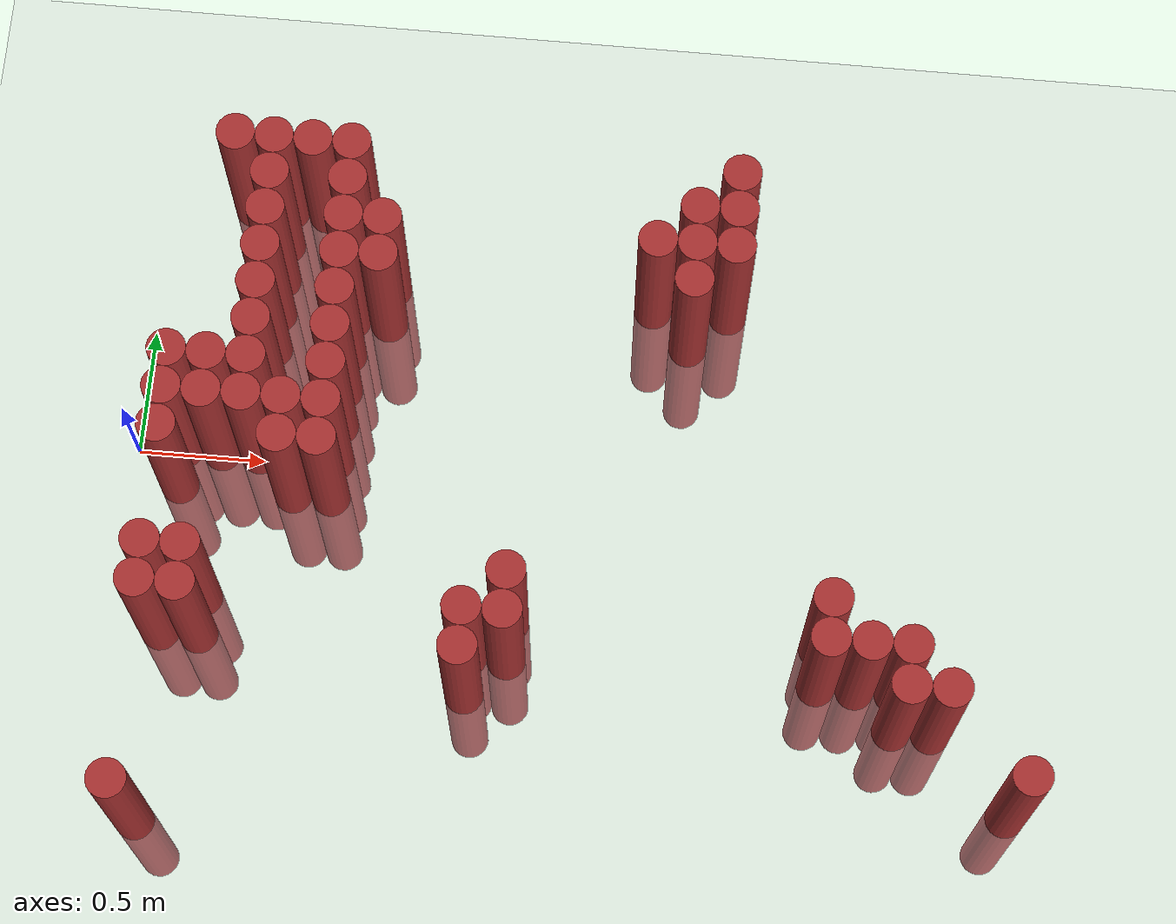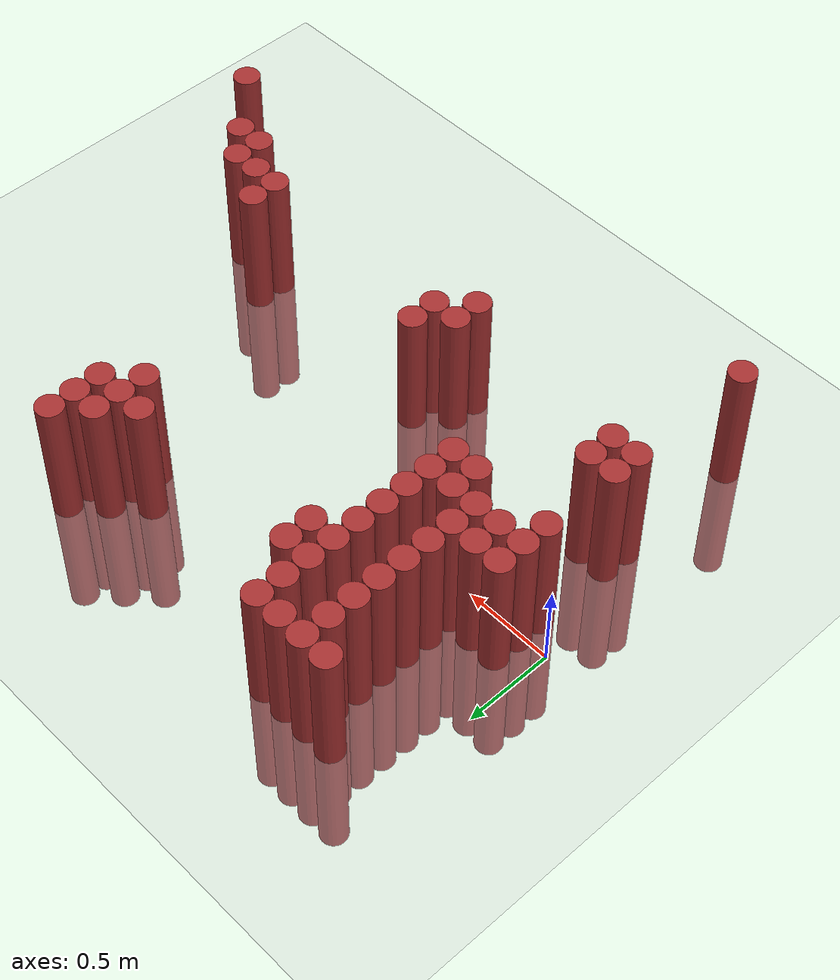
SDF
<sdf version="1.6">
 <world name="default">
  <model name="ground_plane">
   <static>1</static>
   <link name="link">
    <collision name="collision">
     <geometry><plane><normal>0 0 1</normal><size>100 100</size></plane></geometry>
     <surface><friction><ode><mu>100</mu><mu2>50</mu2></ode></friction></surface>
    </collision>
    <visual name="visual">
     <cast_shadows>0</cast_shadows>
     <geometry><plane><normal>0 0 1</normal><size>100 100</size></plane></geometry>
     <material>
      <script><uri>file://media/materials/scripts/gazebo.material</uri><name>Gazebo/Grey</name></script>
     </material>
    </visual>
   </link>
  </model>
  <model name="unit_cylinder_430">
   <static>1</static>
   <pose>0.175000 -1.475000 0.000000 0.000000 0.000000 0.000000</pose>
   <link name="link">
    <inertial>
     <mass>1</mass>
     <inertia><ixx>0.145833</ixx><ixy>0</ixy><ixz>0</ixz><iyy>0.145833</iyy><iyz>0</iyz><izz>0.125</izz></inertia>
    </inertial>
    <collision name="collision">
     <geometry><cylinder><radius>0.075000</radius><length>1.5</length></cylinder></geometry>
    </collision>
    <visual name="visual">
     <geometry><cylinder><radius>0.075000</radius><length>1.5</length></cylinder></geometry>
     <material>
      <ambient>0.648000 0.192000 0.192000 1</ambient>
      <diffuse>0.648000 0.192000 0.192000 1</diffuse>
     </material>
     <material>
      <script><name>Gazebo/Grey</name><uri>file://media/materials/scripts/gazebo.material</uri></script>
     </material>
    </visual>
   </link>
  </model>
  <model name="unit_cylinder_431">
   <static>1</static>
   <pose>0.175000 -0.725000 0.000000 0.000000 0.000000 0.000000</pose>
   <link name="link">
    <inertial>
     <mass>1</mass>
     <inertia><ixx>0.145833</ixx><ixy>0</ixy><ixz>0</ixz><iyy>0.145833</iyy><iyz>0</iyz><izz>0.125</izz></inertia>
    </inertial>
    <collision name="collision">
     <geometry><cylinder><radius>0.075000</radius><length>1.5</length></cylinder></geometry>
    </collision>
    <visual name="visual">
     <geometry><cylinder><radius>0.075000</radius><length>1.5</length></cylinder></geometry>
     <material>
      <ambient>0.648000 0.192000 0.192000 1</ambient>
      <diffuse>0.648000 0.192000 0.192000 1</diffuse>
     </material>
     <material>
      <script><name>Gazebo/Grey</name><uri>file://media/materials/scripts/gazebo.material</uri></script>
     </material>
    </visual>
   </link>
  </model>
  <model name="unit_cylinder_432">
   <static>1</static>
   <pose>0.175000 -0.575000 0.000000 0.000000 0.000000 0.000000</pose>
   <link name="link">
    <inertial>
     <mass>1</mass>
     <inertia><ixx>0.145833</ixx><ixy>0</ixy><ixz>0</ixz><iyy>0.145833</iyy><iyz>0</iyz><izz>0.125</izz></inertia>
    </inertial>
    <collision name="collision">
     <geometry><cylinder><radius>0.075000</radius><length>1.5</length></cylinder></geometry>
    </collision>
    <visual name="visual">
     <geometry><cylinder><radius>0.075000</radius><length>1.5</length></cylinder></geometry>
     <material>
      <ambient>0.648000 0.192000 0.192000 1</ambient>
      <diffuse>0.648000 0.192000 0.192000 1</diffuse>
     </material>
     <material>
      <script><name>Gazebo/Grey</name><uri>file://media/materials/scripts/gazebo.material</uri></script>
     </material>
    </visual>
   </link>
  </model>
  <model name="unit_cylinder_433">
   <static>1</static>
   <pose>0.175000 -0.125000 0.000000 0.000000 0.000000 0.000000</pose>
   <link name="link">
    <inertial>
     <mass>1</mass>
     <inertia><ixx>0.145833</ixx><ixy>0</ixy><ixz>0</ixz><iyy>0.145833</iyy><iyz>0</iyz><izz>0.125</izz></inertia>
    </inertial>
    <collision name="collision">
     <geometry><cylinder><radius>0.075000</radius><length>1.5</length></cylinder></geometry>
    </collision>
    <visual name="visual">
     <geometry><cylinder><radius>0.075000</radius><length>1.5</length></cylinder></geometry>
     <material>
      <ambient>0.648000 0.192000 0.192000 1</ambient>
      <diffuse>0.648000 0.192000 0.192000 1</diffuse>
     </material>
     <material>
      <script><name>Gazebo/Grey</name><uri>file://media/materials/scripts/gazebo.material</uri></script>
     </material>
    </visual>
   </link>
  </model>
  <model name="unit_cylinder_434">
   <static>1</static>
   <pose>0.175000 0.025000 0.000000 0.000000 0.000000 0.000000</pose>
   <link name="link">
    <inertial>
     <mass>1</mass>
     <inertia><ixx>0.145833</ixx><ixy>0</ixy><ixz>0</ixz><iyy>0.145833</iyy><iyz>0</iyz><izz>0.125</izz></inertia>
    </inertial>
    <collision name="collision">
     <geometry><cylinder><radius>0.075000</radius><length>1.5</length></cylinder></geometry>
    </collision>
    <visual name="visual">
     <geometry><cylinder><radius>0.075000</radius><length>1.5</length></cylinder></geometry>
     <material>
      <ambient>0.648000 0.192000 0.192000 1</ambient>
      <diffuse>0.648000 0.192000 0.192000 1</diffuse>
     </material>
     <material>
      <script><name>Gazebo/Grey</name><uri>file://media/materials/scripts/gazebo.material</uri></script>
     </material>
    </visual>
   </link>
  </model>
  <model name="unit_cylinder_435">
   <static>1</static>
   <pose>0.175000 0.175000 0.000000 0.000000 0.000000 0.000000</pose>
   <link name="link">
    <inertial>
     <mass>1</mass>
     <inertia><ixx>0.145833</ixx><ixy>0</ixy><ixz>0</ixz><iyy>0.145833</iyy><iyz>0</iyz><izz>0.125</izz></inertia>
    </inertial>
    <collision name="collision">
     <geometry><cylinder><radius>0.075000</radius><length>1.5</length></cylinder></geometry>
    </collision>
    <visual name="visual">
     <geometry><cylinder><radius>0.075000</radius><length>1.5</length></cylinder></geometry>
     <material>
      <ambient>0.648000 0.192000 0.192000 1</ambient>
      <diffuse>0.648000 0.192000 0.192000 1</diffuse>
     </material>
     <material>
      <script><name>Gazebo/Grey</name><uri>file://media/materials/scripts/gazebo.material</uri></script>
     </material>
    </visual>
   </link>
  </model>
  <model name="unit_cylinder_446">
   <static>1</static>
   <pose>0.325000 -0.725000 0.000000 0.000000 0.000000 0.000000</pose>
   <link name="link">
    <inertial>
     <mass>1</mass>
     <inertia><ixx>0.145833</ixx><ixy>0</ixy><ixz>0</ixz><iyy>0.145833</iyy><iyz>0</iyz><izz>0.125</izz></inertia>
    </inertial>
    <collision name="collision">
     <geometry><cylinder><radius>0.075000</radius><length>1.5</length></cylinder></geometry>
    </collision>
    <visual name="visual">
     <geometry><cylinder><radius>0.075000</radius><length>1.5</length></cylinder></geometry>
     <material>
      <ambient>0.648000 0.192000 0.192000 1</ambient>
      <diffuse>0.648000 0.192000 0.192000 1</diffuse>
     </material>
     <material>
      <script><name>Gazebo/Grey</name><uri>file://media/materials/scripts/gazebo.material</uri></script>
     </material>
    </visual>
   </link>
  </model>
  <model name="unit_cylinder_447">
   <static>1</static>
   <pose>0.325000 -0.575000 0.000000 0.000000 0.000000 0.000000</pose>
   <link name="link">
    <inertial>
     <mass>1</mass>
     <inertia><ixx>0.145833</ixx><ixy>0</ixy><ixz>0</ixz><iyy>0.145833</iyy><iyz>0</iyz><izz>0.125</izz></inertia>
    </inertial>
    <collision name="collision">
     <geometry><cylinder><radius>0.075000</radius><length>1.5</length></cylinder></geometry>
    </collision>
    <visual name="visual">
     <geometry><cylinder><radius>0.075000</radius><length>1.5</length></cylinder></geometry>
     <material>
      <ambient>0.648000 0.192000 0.192000 1</ambient>
      <diffuse>0.648000 0.192000 0.192000 1</diffuse>
     </material>
     <material>
      <script><name>Gazebo/Grey</name><uri>file://media/materials/scripts/gazebo.material</uri></script>
     </material>
    </visual>
   </link>
  </model>
  <model name="unit_cylinder_448">
   <static>1</static>
   <pose>0.325000 0.025000 0.000000 0.000000 0.000000 0.000000</pose>
   <link name="link">
    <inertial>
     <mass>1</mass>
     <inertia><ixx>0.145833</ixx><ixy>0</ixy><ixz>0</ixz><iyy>0.145833</iyy><iyz>0</iyz><izz>0.125</izz></inertia>
    </inertial>
    <collision name="collision">
     <geometry><cylinder><radius>0.075000</radius><length>1.5</length></cylinder></geometry>
    </collision>
    <visual name="visual">
     <geometry><cylinder><radius>0.075000</radius><length>1.5</length></cylinder></geometry>
     <material>
      <ambient>0.648000 0.192000 0.192000 1</ambient>
      <diffuse>0.648000 0.192000 0.192000 1</diffuse>
     </material>
     <material>
      <script><name>Gazebo/Grey</name><uri>file://media/materials/scripts/gazebo.material</uri></script>
     </material>
    </visual>
   </link>
  </model>
  <model name="unit_cylinder_449">
   <static>1</static>
   <pose>0.325000 0.175000 0.000000 0.000000 0.000000 0.000000</pose>
   <link name="link">
    <inertial>
     <mass>1</mass>
     <inertia><ixx>0.145833</ixx><ixy>0</ixy><ixz>0</ixz><iyy>0.145833</iyy><iyz>0</iyz><izz>0.125</izz></inertia>
    </inertial>
    <collision name="collision">
     <geometry><cylinder><radius>0.075000</radius><length>1.5</length></cylinder></geometry>
    </collision>
    <visual name="visual">
     <geometry><cylinder><radius>0.075000</radius><length>1.5</length></cylinder></geometry>
     <material>
      <ambient>0.648000 0.192000 0.192000 1</ambient>
      <diffuse>0.648000 0.192000 0.192000 1</diffuse>
     </material>
     <material>
      <script><name>Gazebo/Grey</name><uri>file://media/materials/scripts/gazebo.material</uri></script>
     </material>
    </visual>
   </link>
  </model>
  <model name="unit_cylinder_450">
   <static>1</static>
   <pose>0.325000 1.075000 0.000000 0.000000 0.000000 0.000000</pose>
   <link name="link">
    <inertial>
     <mass>1</mass>
     <inertia><ixx>0.145833</ixx><ixy>0</ixy><ixz>0</ixz><iyy>0.145833</iyy><iyz>0</iyz><izz>0.125</izz></inertia>
    </inertial>
    <collision name="collision">
     <geometry><cylinder><radius>0.075000</radius><length>1.5</length></cylinder></geometry>
    </collision>
    <visual name="visual">
     <geometry><cylinder><radius>0.075000</radius><length>1.5</length></cylinder></geometry>
     <material>
      <ambient>0.648000 0.192000 0.192000 1</ambient>
      <diffuse>0.648000 0.192000 0.192000 1</diffuse>
     </material>
     <material>
      <script><name>Gazebo/Grey</name><uri>file://media/materials/scripts/gazebo.material</uri></script>
     </material>
    </visual>
   </link>
  </model>
  <model name="unit_cylinder_460">
   <static>1</static>
   <pose>0.475000 0.025000 0.000000 0.000000 0.000000 0.000000</pose>
   <link name="link">
    <inertial>
     <mass>1</mass>
     <inertia><ixx>0.145833</ixx><ixy>0</ixy><ixz>0</ixz><iyy>0.145833</iyy><iyz>0</iyz><izz>0.125</izz></inertia>
    </inertial>
    <collision name="collision">
     <geometry><cylinder><radius>0.075000</radius><length>1.5</length></cylinder></geometry>
    </collision>
    <visual name="visual">
     <geometry><cylinder><radius>0.075000</radius><length>1.5</length></cylinder></geometry>
     <material>
      <ambient>0.648000 0.192000 0.192000 1</ambient>
      <diffuse>0.648000 0.192000 0.192000 1</diffuse>
     </material>
     <material>
      <script><name>Gazebo/Grey</name><uri>file://media/materials/scripts/gazebo.material</uri></script>
     </material>
    </visual>
   </link>
  </model>
  <model name="unit_cylinder_461">
   <static>1</static>
   <pose>0.475000 0.175000 0.000000 0.000000 0.000000 0.000000</pose>
   <link name="link">
    <inertial>
     <mass>1</mass>
     <inertia><ixx>0.145833</ixx><ixy>0</ixy><ixz>0</ixz><iyy>0.145833</iyy><iyz>0</iyz><izz>0.125</izz></inertia>
    </inertial>
    <collision name="collision">
     <geometry><cylinder><radius>0.075000</radius><length>1.5</length></cylinder></geometry>
    </collision>
    <visual name="visual">
     <geometry><cylinder><radius>0.075000</radius><length>1.5</length></cylinder></geometry>
     <material>
      <ambient>0.648000 0.192000 0.192000 1</ambient>
      <diffuse>0.648000 0.192000 0.192000 1</diffuse>
     </material>
     <material>
      <script><name>Gazebo/Grey</name><uri>file://media/materials/scripts/gazebo.material</uri></script>
     </material>
    </visual>
   </link>
  </model>
  <model name="unit_cylinder_462">
   <static>1</static>
   <pose>0.475000 0.325000 0.000000 0.000000 0.000000 0.000000</pose>
   <link name="link">
    <inertial>
     <mass>1</mass>
     <inertia><ixx>0.145833</ixx><ixy>0</ixy><ixz>0</ixz><iyy>0.145833</iyy><iyz>0</iyz><izz>0.125</izz></inertia>
    </inertial>
    <collision name="collision">
     <geometry><cylinder><radius>0.075000</radius><length>1.5</length></cylinder></geometry>
    </collision>
    <visual name="visual">
     <geometry><cylinder><radius>0.075000</radius><length>1.5</length></cylinder></geometry>
     <material>
      <ambient>0.648000 0.192000 0.192000 1</ambient>
      <diffuse>0.648000 0.192000 0.192000 1</diffuse>
     </material>
     <material>
      <script><name>Gazebo/Grey</name><uri>file://media/materials/scripts/gazebo.material</uri></script>
     </material>
    </visual>
   </link>
  </model>
  <model name="unit_cylinder_463">
   <static>1</static>
   <pose>0.475000 0.475000 0.000000 0.000000 0.000000 0.000000</pose>
   <link name="link">
    <inertial>
     <mass>1</mass>
     <inertia><ixx>0.145833</ixx><ixy>0</ixy><ixz>0</ixz><iyy>0.145833</iyy><iyz>0</iyz><izz>0.125</izz></inertia>
    </inertial>
    <collision name="collision">
     <geometry><cylinder><radius>0.075000</radius><length>1.5</length></cylinder></geometry>
    </collision>
    <visual name="visual">
     <geometry><cylinder><radius>0.075000</radius><length>1.5</length></cylinder></geometry>
     <material>
      <ambient>0.648000 0.192000 0.192000 1</ambient>
      <diffuse>0.648000 0.192000 0.192000 1</diffuse>
     </material>
     <material>
      <script><name>Gazebo/Grey</name><uri>file://media/materials/scripts/gazebo.material</uri></script>
     </material>
    </visual>
   </link>
  </model>
  <model name="unit_cylinder_464">
   <static>1</static>
   <pose>0.475000 0.625000 0.000000 0.000000 0.000000 0.000000</pose>
   <link name="link">
    <inertial>
     <mass>1</mass>
     <inertia><ixx>0.145833</ixx><ixy>0</ixy><ixz>0</ixz><iyy>0.145833</iyy><iyz>0</iyz><izz>0.125</izz></inertia>
    </inertial>
    <collision name="collision">
     <geometry><cylinder><radius>0.075000</radius><length>1.5</length></cylinder></geometry>
    </collision>
    <visual name="visual">
     <geometry><cylinder><radius>0.075000</radius><length>1.5</length></cylinder></geometry>
     <material>
      <ambient>0.648000 0.192000 0.192000 1</ambient>
      <diffuse>0.648000 0.192000 0.192000 1</diffuse>
     </material>
     <material>
      <script><name>Gazebo/Grey</name><uri>file://media/materials/scripts/gazebo.material</uri></script>
     </material>
    </visual>
   </link>
  </model>
  <model name="unit_cylinder_465">
   <static>1</static>
   <pose>0.475000 0.775000 0.000000 0.000000 0.000000 0.000000</pose>
   <link name="link">
    <inertial>
     <mass>1</mass>
     <inertia><ixx>0.145833</ixx><ixy>0</ixy><ixz>0</ixz><iyy>0.145833</iyy><iyz>0</iyz><izz>0.125</izz></inertia>
    </inertial>
    <collision name="collision">
     <geometry><cylinder><radius>0.075000</radius><length>1.5</length></cylinder></geometry>
    </collision>
    <visual name="visual">
     <geometry><cylinder><radius>0.075000</radius><length>1.5</length></cylinder></geometry>
     <material>
      <ambient>0.648000 0.192000 0.192000 1</ambient>
      <diffuse>0.648000 0.192000 0.192000 1</diffuse>
     </material>
     <material>
      <script><name>Gazebo/Grey</name><uri>file://media/materials/scripts/gazebo.material</uri></script>
     </material>
    </visual>
   </link>
  </model>
  <model name="unit_cylinder_466">
   <static>1</static>
   <pose>0.475000 0.925000 0.000000 0.000000 0.000000 0.000000</pose>
   <link name="link">
    <inertial>
     <mass>1</mass>
     <inertia><ixx>0.145833</ixx><ixy>0</ixy><ixz>0</ixz><iyy>0.145833</iyy><iyz>0</iyz><izz>0.125</izz></inertia>
    </inertial>
    <collision name="collision">
     <geometry><cylinder><radius>0.075000</radius><length>1.5</length></cylinder></geometry>
    </collision>
    <visual name="visual">
     <geometry><cylinder><radius>0.075000</radius><length>1.5</length></cylinder></geometry>
     <material>
      <ambient>0.648000 0.192000 0.192000 1</ambient>
      <diffuse>0.648000 0.192000 0.192000 1</diffuse>
     </material>
     <material>
      <script><name>Gazebo/Grey</name><uri>file://media/materials/scripts/gazebo.material</uri></script>
     </material>
    </visual>
   </link>
  </model>
  <model name="unit_cylinder_467">
   <static>1</static>
   <pose>0.475000 1.075000 0.000000 0.000000 0.000000 0.000000</pose>
   <link name="link">
    <inertial>
     <mass>1</mass>
     <inertia><ixx>0.145833</ixx><ixy>0</ixy><ixz>0</ixz><iyy>0.145833</iyy><iyz>0</iyz><izz>0.125</izz></inertia>
    </inertial>
    <collision name="collision">
     <geometry><cylinder><radius>0.075000</radius><length>1.5</length></cylinder></geometry>
    </collision>
    <visual name="visual">
     <geometry><cylinder><radius>0.075000</radius><length>1.5</length></cylinder></geometry>
     <material>
      <ambient>0.648000 0.192000 0.192000 1</ambient>
      <diffuse>0.648000 0.192000 0.192000 1</diffuse>
     </material>
     <material>
      <script><name>Gazebo/Grey</name><uri>file://media/materials/scripts/gazebo.material</uri></script>
     </material>
    </visual>
   </link>
  </model>
  <model name="unit_cylinder_473">
   <static>1</static>
   <pose>0.625000 -0.125000 0.000000 0.000000 0.000000 0.000000</pose>
   <link name="link">
    <inertial>
     <mass>1</mass>
     <inertia><ixx>0.145833</ixx><ixy>0</ixy><ixz>0</ixz><iyy>0.145833</iyy><iyz>0</iyz><izz>0.125</izz></inertia>
    </inertial>
    <collision name="collision">
     <geometry><cylinder><radius>0.075000</radius><length>1.5</length></cylinder></geometry>
    </collision>
    <visual name="visual">
     <geometry><cylinder><radius>0.075000</radius><length>1.5</length></cylinder></geometry>
     <material>
      <ambient>0.648000 0.192000 0.192000 1</ambient>
      <diffuse>0.648000 0.192000 0.192000 1</diffuse>
     </material>
     <material>
      <script><name>Gazebo/Grey</name><uri>file://media/materials/scripts/gazebo.material</uri></script>
     </material>
    </visual>
   </link>
  </model>
  <model name="unit_cylinder_474">
   <static>1</static>
   <pose>0.625000 0.025000 0.000000 0.000000 0.000000 0.000000</pose>
   <link name="link">
    <inertial>
     <mass>1</mass>
     <inertia><ixx>0.145833</ixx><ixy>0</ixy><ixz>0</ixz><iyy>0.145833</iyy><iyz>0</iyz><izz>0.125</izz></inertia>
    </inertial>
    <collision name="collision">
     <geometry><cylinder><radius>0.075000</radius><length>1.5</length></cylinder></geometry>
    </collision>
    <visual name="visual">
     <geometry><cylinder><radius>0.075000</radius><length>1.5</length></cylinder></geometry>
     <material>
      <ambient>0.648000 0.192000 0.192000 1</ambient>
      <diffuse>0.648000 0.192000 0.192000 1</diffuse>
     </material>
     <material>
      <script><name>Gazebo/Grey</name><uri>file://media/materials/scripts/gazebo.material</uri></script>
     </material>
    </visual>
   </link>
  </model>
  <model name="unit_cylinder_475">
   <static>1</static>
   <pose>0.625000 1.075000 0.000000 0.000000 0.000000 0.000000</pose>
   <link name="link">
    <inertial>
     <mass>1</mass>
     <inertia><ixx>0.145833</ixx><ixy>0</ixy><ixz>0</ixz><iyy>0.145833</iyy><iyz>0</iyz><izz>0.125</izz></inertia>
    </inertial>
    <collision name="collision">
     <geometry><cylinder><radius>0.075000</radius><length>1.5</length></cylinder></geometry>
    </collision>
    <visual name="visual">
     <geometry><cylinder><radius>0.075000</radius><length>1.5</length></cylinder></geometry>
     <material>
      <ambient>0.648000 0.192000 0.192000 1</ambient>
      <diffuse>0.648000 0.192000 0.192000 1</diffuse>
     </material>
     <material>
      <script><name>Gazebo/Grey</name><uri>file://media/materials/scripts/gazebo.material</uri></script>
     </material>
    </visual>
   </link>
  </model>
  <model name="unit_cylinder_479">
   <static>1</static>
   <pose>0.775000 -0.125000 0.000000 0.000000 0.000000 0.000000</pose>
   <link name="link">
    <inertial>
     <mass>1</mass>
     <inertia><ixx>0.145833</ixx><ixy>0</ixy><ixz>0</ixz><iyy>0.145833</iyy><iyz>0</iyz><izz>0.125</izz></inertia>
    </inertial>
    <collision name="collision">
     <geometry><cylinder><radius>0.075000</radius><length>1.5</length></cylinder></geometry>
    </collision>
    <visual name="visual">
     <geometry><cylinder><radius>0.075000</radius><length>1.5</length></cylinder></geometry>
     <material>
      <ambient>0.648000 0.192000 0.192000 1</ambient>
      <diffuse>0.648000 0.192000 0.192000 1</diffuse>
     </material>
     <material>
      <script><name>Gazebo/Grey</name><uri>file://media/materials/scripts/gazebo.material</uri></script>
     </material>
    </visual>
   </link>
  </model>
  <model name="unit_cylinder_480">
   <static>1</static>
   <pose>0.775000 0.025000 0.000000 0.000000 0.000000 0.000000</pose>
   <link name="link">
    <inertial>
     <mass>1</mass>
     <inertia><ixx>0.145833</ixx><ixy>0</ixy><ixz>0</ixz><iyy>0.145833</iyy><iyz>0</iyz><izz>0.125</izz></inertia>
    </inertial>
    <collision name="collision">
     <geometry><cylinder><radius>0.075000</radius><length>1.5</length></cylinder></geometry>
    </collision>
    <visual name="visual">
     <geometry><cylinder><radius>0.075000</radius><length>1.5</length></cylinder></geometry>
     <material>
      <ambient>0.648000 0.192000 0.192000 1</ambient>
      <diffuse>0.648000 0.192000 0.192000 1</diffuse>
     </material>
     <material>
      <script><name>Gazebo/Grey</name><uri>file://media/materials/scripts/gazebo.material</uri></script>
     </material>
    </visual>
   </link>
  </model>
  <model name="unit_cylinder_481">
   <static>1</static>
   <pose>0.775000 0.175000 0.000000 0.000000 0.000000 0.000000</pose>
   <link name="link">
    <inertial>
     <mass>1</mass>
     <inertia><ixx>0.145833</ixx><ixy>0</ixy><ixz>0</ixz><iyy>0.145833</iyy><iyz>0</iyz><izz>0.125</izz></inertia>
    </inertial>
    <collision name="collision">
     <geometry><cylinder><radius>0.075000</radius><length>1.5</length></cylinder></geometry>
    </collision>
    <visual name="visual">
     <geometry><cylinder><radius>0.075000</radius><length>1.5</length></cylinder></geometry>
     <material>
      <ambient>0.648000 0.192000 0.192000 1</ambient>
      <diffuse>0.648000 0.192000 0.192000 1</diffuse>
     </material>
     <material>
      <script><name>Gazebo/Grey</name><uri>file://media/materials/scripts/gazebo.material</uri></script>
     </material>
    </visual>
   </link>
  </model>
  <model name="unit_cylinder_482">
   <static>1</static>
   <pose>0.775000 0.325000 0.000000 0.000000 0.000000 0.000000</pose>
   <link name="link">
    <inertial>
     <mass>1</mass>
     <inertia><ixx>0.145833</ixx><ixy>0</ixy><ixz>0</ixz><iyy>0.145833</iyy><iyz>0</iyz><izz>0.125</izz></inertia>
    </inertial>
    <collision name="collision">
     <geometry><cylinder><radius>0.075000</radius><length>1.5</length></cylinder></geometry>
    </collision>
    <visual name="visual">
     <geometry><cylinder><radius>0.075000</radius><length>1.5</length></cylinder></geometry>
     <material>
      <ambient>0.648000 0.192000 0.192000 1</ambient>
      <diffuse>0.648000 0.192000 0.192000 1</diffuse>
     </material>
     <material>
      <script><name>Gazebo/Grey</name><uri>file://media/materials/scripts/gazebo.material</uri></script>
     </material>
    </visual>
   </link>
  </model>
  <model name="unit_cylinder_483">
   <static>1</static>
   <pose>0.775000 0.475000 0.000000 0.000000 0.000000 0.000000</pose>
   <link name="link">
    <inertial>
     <mass>1</mass>
     <inertia><ixx>0.145833</ixx><ixy>0</ixy><ixz>0</ixz><iyy>0.145833</iyy><iyz>0</iyz><izz>0.125</izz></inertia>
    </inertial>
    <collision name="collision">
     <geometry><cylinder><radius>0.075000</radius><length>1.5</length></cylinder></geometry>
    </collision>
    <visual name="visual">
     <geometry><cylinder><radius>0.075000</radius><length>1.5</length></cylinder></geometry>
     <material>
      <ambient>0.648000 0.192000 0.192000 1</ambient>
      <diffuse>0.648000 0.192000 0.192000 1</diffuse>
     </material>
     <material>
      <script><name>Gazebo/Grey</name><uri>file://media/materials/scripts/gazebo.material</uri></script>
     </material>
    </visual>
   </link>
  </model>
  <model name="unit_cylinder_484">
   <static>1</static>
   <pose>0.775000 0.625000 0.000000 0.000000 0.000000 0.000000</pose>
   <link name="link">
    <inertial>
     <mass>1</mass>
     <inertia><ixx>0.145833</ixx><ixy>0</ixy><ixz>0</ixz><iyy>0.145833</iyy><iyz>0</iyz><izz>0.125</izz></inertia>
    </inertial>
    <collision name="collision">
     <geometry><cylinder><radius>0.075000</radius><length>1.5</length></cylinder></geometry>
    </collision>
    <visual name="visual">
     <geometry><cylinder><radius>0.075000</radius><length>1.5</length></cylinder></geometry>
     <material>
      <ambient>0.648000 0.192000 0.192000 1</ambient>
      <diffuse>0.648000 0.192000 0.192000 1</diffuse>
     </material>
     <material>
      <script><name>Gazebo/Grey</name><uri>file://media/materials/scripts/gazebo.material</uri></script>
     </material>
    </visual>
   </link>
  </model>
  <model name="unit_cylinder_485">
   <static>1</static>
   <pose>0.775000 0.775000 0.000000 0.000000 0.000000 0.000000</pose>
   <link name="link">
    <inertial>
     <mass>1</mass>
     <inertia><ixx>0.145833</ixx><ixy>0</ixy><ixz>0</ixz><iyy>0.145833</iyy><iyz>0</iyz><izz>0.125</izz></inertia>
    </inertial>
    <collision name="collision">
     <geometry><cylinder><radius>0.075000</radius><length>1.5</length></cylinder></geometry>
    </collision>
    <visual name="visual">
     <geometry><cylinder><radius>0.075000</radius><length>1.5</length></cylinder></geometry>
     <material>
      <ambient>0.648000 0.192000 0.192000 1</ambient>
      <diffuse>0.648000 0.192000 0.192000 1</diffuse>
     </material>
     <material>
      <script><name>Gazebo/Grey</name><uri>file://media/materials/scripts/gazebo.material</uri></script>
     </material>
    </visual>
   </link>
  </model>
  <model name="unit_cylinder_486">
   <static>1</static>
   <pose>0.775000 0.925000 0.000000 0.000000 0.000000 0.000000</pose>
   <link name="link">
    <inertial>
     <mass>1</mass>
     <inertia><ixx>0.145833</ixx><ixy>0</ixy><ixz>0</ixz><iyy>0.145833</iyy><iyz>0</iyz><izz>0.125</izz></inertia>
    </inertial>
    <collision name="collision">
     <geometry><cylinder><radius>0.075000</radius><length>1.5</length></cylinder></geometry>
    </collision>
    <visual name="visual">
     <geometry><cylinder><radius>0.075000</radius><length>1.5</length></cylinder></geometry>
     <material>
      <ambient>0.648000 0.192000 0.192000 1</ambient>
      <diffuse>0.648000 0.192000 0.192000 1</diffuse>
     </material>
     <material>
      <script><name>Gazebo/Grey</name><uri>file://media/materials/scripts/gazebo.material</uri></script>
     </material>
    </visual>
   </link>
  </model>
  <model name="unit_cylinder_487">
   <static>1</static>
   <pose>0.775000 1.075000 0.000000 0.000000 0.000000 0.000000</pose>
   <link name="link">
    <inertial>
     <mass>1</mass>
     <inertia><ixx>0.145833</ixx><ixy>0</ixy><ixz>0</ixz><iyy>0.145833</iyy><iyz>0</iyz><izz>0.125</izz></inertia>
    </inertial>
    <collision name="collision">
     <geometry><cylinder><radius>0.075000</radius><length>1.5</length></cylinder></geometry>
    </collision>
    <visual name="visual">
     <geometry><cylinder><radius>0.075000</radius><length>1.5</length></cylinder></geometry>
     <material>
      <ambient>0.648000 0.192000 0.192000 1</ambient>
      <diffuse>0.648000 0.192000 0.192000 1</diffuse>
     </material>
     <material>
      <script><name>Gazebo/Grey</name><uri>file://media/materials/scripts/gazebo.material</uri></script>
     </material>
    </visual>
   </link>
  </model>
  <model name="unit_cylinder_489">
   <static>1</static>
   <pose>0.925000 0.625000 0.000000 0.000000 0.000000 0.000000</pose>
   <link name="link">
    <inertial>
     <mass>1</mass>
     <inertia><ixx>0.145833</ixx><ixy>0</ixy><ixz>0</ixz><iyy>0.145833</iyy><iyz>0</iyz><izz>0.125</izz></inertia>
    </inertial>
    <collision name="collision">
     <geometry><cylinder><radius>0.075000</radius><length>1.5</length></cylinder></geometry>
    </collision>
    <visual name="visual">
     <geometry><cylinder><radius>0.075000</radius><length>1.5</length></cylinder></geometry>
     <material>
      <ambient>0.648000 0.192000 0.192000 1</ambient>
      <diffuse>0.648000 0.192000 0.192000 1</diffuse>
     </material>
     <material>
      <script><name>Gazebo/Grey</name><uri>file://media/materials/scripts/gazebo.material</uri></script>
     </material>
    </visual>
   </link>
  </model>
  <model name="unit_cylinder_490">
   <static>1</static>
   <pose>0.925000 0.775000 0.000000 0.000000 0.000000 0.000000</pose>
   <link name="link">
    <inertial>
     <mass>1</mass>
     <inertia><ixx>0.145833</ixx><ixy>0</ixy><ixz>0</ixz><iyy>0.145833</iyy><iyz>0</iyz><izz>0.125</izz></inertia>
    </inertial>
    <collision name="collision">
     <geometry><cylinder><radius>0.075000</radius><length>1.5</length></cylinder></geometry>
    </collision>
    <visual name="visual">
     <geometry><cylinder><radius>0.075000</radius><length>1.5</length></cylinder></geometry>
     <material>
      <ambient>0.648000 0.192000 0.192000 1</ambient>
      <diffuse>0.648000 0.192000 0.192000 1</diffuse>
     </material>
     <material>
      <script><name>Gazebo/Grey</name><uri>file://media/materials/scripts/gazebo.material</uri></script>
     </material>
    </visual>
   </link>
  </model>
  <model name="unit_cylinder_505">
   <static>1</static>
   <pose>1.375000 -0.875000 0.000000 0.000000 0.000000 0.000000</pose>
   <link name="link">
    <inertial>
     <mass>1</mass>
     <inertia><ixx>0.145833</ixx><ixy>0</ixy><ixz>0</ixz><iyy>0.145833</iyy><iyz>0</iyz><izz>0.125</izz></inertia>
    </inertial>
    <collision name="collision">
     <geometry><cylinder><radius>0.075000</radius><length>1.5</length></cylinder></geometry>
    </collision>
    <visual name="visual">
     <geometry><cylinder><radius>0.075000</radius><length>1.5</length></cylinder></geometry>
     <material>
      <ambient>0.648000 0.192000 0.192000 1</ambient>
      <diffuse>0.648000 0.192000 0.192000 1</diffuse>
     </material>
     <material>
      <script><name>Gazebo/Grey</name><uri>file://media/materials/scripts/gazebo.material</uri></script>
     </material>
    </visual>
   </link>
  </model>
  <model name="unit_cylinder_506">
   <static>1</static>
   <pose>1.375000 -0.725000 0.000000 0.000000 0.000000 0.000000</pose>
   <link name="link">
    <inertial>
     <mass>1</mass>
     <inertia><ixx>0.145833</ixx><ixy>0</ixy><ixz>0</ixz><iyy>0.145833</iyy><iyz>0</iyz><izz>0.125</izz></inertia>
    </inertial>
    <collision name="collision">
     <geometry><cylinder><radius>0.075000</radius><length>1.5</length></cylinder></geometry>
    </collision>
    <visual name="visual">
     <geometry><cylinder><radius>0.075000</radius><length>1.5</length></cylinder></geometry>
     <material>
      <ambient>0.648000 0.192000 0.192000 1</ambient>
      <diffuse>0.648000 0.192000 0.192000 1</diffuse>
     </material>
     <material>
      <script><name>Gazebo/Grey</name><uri>file://media/materials/scripts/gazebo.material</uri></script>
     </material>
    </visual>
   </link>
  </model>
  <model name="unit_cylinder_514">
   <static>1</static>
   <pose>1.525000 -0.725000 0.000000 0.000000 0.000000 0.000000</pose>
   <link name="link">
    <inertial>
     <mass>1</mass>
     <inertia><ixx>0.145833</ixx><ixy>0</ixy><ixz>0</ixz><iyy>0.145833</iyy><iyz>0</iyz><izz>0.125</izz></inertia>
    </inertial>
    <collision name="collision">
     <geometry><cylinder><radius>0.075000</radius><length>1.5</length></cylinder></geometry>
    </collision>
    <visual name="visual">
     <geometry><cylinder><radius>0.075000</radius><length>1.5</length></cylinder></geometry>
     <material>
      <ambient>0.648000 0.192000 0.192000 1</ambient>
      <diffuse>0.648000 0.192000 0.192000 1</diffuse>
     </material>
     <material>
      <script><name>Gazebo/Grey</name><uri>file://media/materials/scripts/gazebo.material</uri></script>
     </material>
    </visual>
   </link>
  </model>
  <model name="unit_cylinder_515">
   <static>1</static>
   <pose>1.525000 -0.575000 0.000000 0.000000 0.000000 0.000000</pose>
   <link name="link">
    <inertial>
     <mass>1</mass>
     <inertia><ixx>0.145833</ixx><ixy>0</ixy><ixz>0</ixz><iyy>0.145833</iyy><iyz>0</iyz><izz>0.125</izz></inertia>
    </inertial>
    <collision name="collision">
     <geometry><cylinder><radius>0.075000</radius><length>1.5</length></cylinder></geometry>
    </collision>
    <visual name="visual">
     <geometry><cylinder><radius>0.075000</radius><length>1.5</length></cylinder></geometry>
     <material>
      <ambient>0.648000 0.192000 0.192000 1</ambient>
      <diffuse>0.648000 0.192000 0.192000 1</diffuse>
     </material>
     <material>
      <script><name>Gazebo/Grey</name><uri>file://media/materials/scripts/gazebo.material</uri></script>
     </material>
    </visual>
   </link>
  </model>
  <model name="unit_cylinder_537">
   <static>1</static>
   <pose>1.975000 0.775000 0.000000 0.000000 0.000000 0.000000</pose>
   <link name="link">
    <inertial>
     <mass>1</mass>
     <inertia><ixx>0.145833</ixx><ixy>0</ixy><ixz>0</ixz><iyy>0.145833</iyy><iyz>0</iyz><izz>0.125</izz></inertia>
    </inertial>
    <collision name="collision">
     <geometry><cylinder><radius>0.075000</radius><length>1.5</length></cylinder></geometry>
    </collision>
    <visual name="visual">
     <geometry><cylinder><radius>0.075000</radius><length>1.5</length></cylinder></geometry>
     <material>
      <ambient>0.648000 0.192000 0.192000 1</ambient>
      <diffuse>0.648000 0.192000 0.192000 1</diffuse>
     </material>
     <material>
      <script><name>Gazebo/Grey</name><uri>file://media/materials/scripts/gazebo.material</uri></script>
     </material>
    </visual>
   </link>
  </model>
  <model name="unit_cylinder_548">
   <static>1</static>
   <pose>2.125000 0.625000 0.000000 0.000000 0.000000 0.000000</pose>
   <link name="link">
    <inertial>
     <mass>1</mass>
     <inertia><ixx>0.145833</ixx><ixy>0</ixy><ixz>0</ixz><iyy>0.145833</iyy><iyz>0</iyz><izz>0.125</izz></inertia>
    </inertial>
    <collision name="collision">
     <geometry><cylinder><radius>0.075000</radius><length>1.5</length></cylinder></geometry>
    </collision>
    <visual name="visual">
     <geometry><cylinder><radius>0.075000</radius><length>1.5</length></cylinder></geometry>
     <material>
      <ambient>0.648000 0.192000 0.192000 1</ambient>
      <diffuse>0.648000 0.192000 0.192000 1</diffuse>
     </material>
     <material>
      <script><name>Gazebo/Grey</name><uri>file://media/materials/scripts/gazebo.material</uri></script>
     </material>
    </visual>
   </link>
  </model>
  <model name="unit_cylinder_549">
   <static>1</static>
   <pose>2.125000 0.775000 0.000000 0.000000 0.000000 0.000000</pose>
   <link name="link">
    <inertial>
     <mass>1</mass>
     <inertia><ixx>0.145833</ixx><ixy>0</ixy><ixz>0</ixz><iyy>0.145833</iyy><iyz>0</iyz><izz>0.125</izz></inertia>
    </inertial>
    <collision name="collision">
     <geometry><cylinder><radius>0.075000</radius><length>1.5</length></cylinder></geometry>
    </collision>
    <visual name="visual">
     <geometry><cylinder><radius>0.075000</radius><length>1.5</length></cylinder></geometry>
     <material>
      <ambient>0.648000 0.192000 0.192000 1</ambient>
      <diffuse>0.648000 0.192000 0.192000 1</diffuse>
     </material>
     <material>
      <script><name>Gazebo/Grey</name><uri>file://media/materials/scripts/gazebo.material</uri></script>
     </material>
    </visual>
   </link>
  </model>
  <model name="unit_cylinder_550">
   <static>1</static>
   <pose>2.125000 0.925000 0.000000 0.000000 0.000000 0.000000</pose>
   <link name="link">
    <inertial>
     <mass>1</mass>
     <inertia><ixx>0.145833</ixx><ixy>0</ixy><ixz>0</ixz><iyy>0.145833</iyy><iyz>0</iyz><izz>0.125</izz></inertia>
    </inertial>
    <collision name="collision">
     <geometry><cylinder><radius>0.075000</radius><length>1.5</length></cylinder></geometry>
    </collision>
    <visual name="visual">
     <geometry><cylinder><radius>0.075000</radius><length>1.5</length></cylinder></geometry>
     <material>
      <ambient>0.648000 0.192000 0.192000 1</ambient>
      <diffuse>0.648000 0.192000 0.192000 1</diffuse>
     </material>
     <material>
      <script><name>Gazebo/Grey</name><uri>file://media/materials/scripts/gazebo.material</uri></script>
     </material>
    </visual>
   </link>
  </model>
  <model name="unit_cylinder_558">
   <static>1</static>
   <pose>2.275000 0.775000 0.000000 0.000000 0.000000 0.000000</pose>
   <link name="link">
    <inertial>
     <mass>1</mass>
     <inertia><ixx>0.145833</ixx><ixy>0</ixy><ixz>0</ixz><iyy>0.145833</iyy><iyz>0</iyz><izz>0.125</izz></inertia>
    </inertial>
    <collision name="collision">
     <geometry><cylinder><radius>0.075000</radius><length>1.5</length></cylinder></geometry>
    </collision>
    <visual name="visual">
     <geometry><cylinder><radius>0.075000</radius><length>1.5</length></cylinder></geometry>
     <material>
      <ambient>0.648000 0.192000 0.192000 1</ambient>
      <diffuse>0.648000 0.192000 0.192000 1</diffuse>
     </material>
     <material>
      <script><name>Gazebo/Grey</name><uri>file://media/materials/scripts/gazebo.material</uri></script>
     </material>
    </visual>
   </link>
  </model>
  <model name="unit_cylinder_559">
   <static>1</static>
   <pose>2.275000 0.925000 0.000000 0.000000 0.000000 0.000000</pose>
   <link name="link">
    <inertial>
     <mass>1</mass>
     <inertia><ixx>0.145833</ixx><ixy>0</ixy><ixz>0</ixz><iyy>0.145833</iyy><iyz>0</iyz><izz>0.125</izz></inertia>
    </inertial>
    <collision name="collision">
     <geometry><cylinder><radius>0.075000</radius><length>1.5</length></cylinder></geometry>
    </collision>
    <visual name="visual">
     <geometry><cylinder><radius>0.075000</radius><length>1.5</length></cylinder></geometry>
     <material>
      <ambient>0.648000 0.192000 0.192000 1</ambient>
      <diffuse>0.648000 0.192000 0.192000 1</diffuse>
     </material>
     <material>
      <script><name>Gazebo/Grey</name><uri>file://media/materials/scripts/gazebo.material</uri></script>
     </material>
    </visual>
   </link>
  </model>
  <model name="unit_cylinder_560">
   <static>1</static>
   <pose>2.275000 1.075000 0.000000 0.000000 0.000000 0.000000</pose>
   <link name="link">
    <inertial>
     <mass>1</mass>
     <inertia><ixx>0.145833</ixx><ixy>0</ixy><ixz>0</ixz><iyy>0.145833</iyy><iyz>0</iyz><izz>0.125</izz></inertia>
    </inertial>
    <collision name="collision">
     <geometry><cylinder><radius>0.075000</radius><length>1.5</length></cylinder></geometry>
    </collision>
    <visual name="visual">
     <geometry><cylinder><radius>0.075000</radius><length>1.5</length></cylinder></geometry>
     <material>
      <ambient>0.648000 0.192000 0.192000 1</ambient>
      <diffuse>0.648000 0.192000 0.192000 1</diffuse>
     </material>
     <material>
      <script><name>Gazebo/Grey</name><uri>file://media/materials/scripts/gazebo.material</uri></script>
     </material>
    </visual>
   </link>
  </model>
  <model name="unit_cylinder_566">
   <static>1</static>
   <pose>2.725000 -0.725000 0.000000 0.000000 0.000000 0.000000</pose>
   <link name="link">
    <inertial>
     <mass>1</mass>
     <inertia><ixx>0.145833</ixx><ixy>0</ixy><ixz>0</ixz><iyy>0.145833</iyy><iyz>0</iyz><izz>0.125</izz></inertia>
    </inertial>
    <collision name="collision">
     <geometry><cylinder><radius>0.075000</radius><length>1.5</length></cylinder></geometry>
    </collision>
    <visual name="visual">
     <geometry><cylinder><radius>0.075000</radius><length>1.5</length></cylinder></geometry>
     <material>
      <ambient>0.648000 0.192000 0.192000 1</ambient>
      <diffuse>0.648000 0.192000 0.192000 1</diffuse>
     </material>
     <material>
      <script><name>Gazebo/Grey</name><uri>file://media/materials/scripts/gazebo.material</uri></script>
     </material>
    </visual>
   </link>
  </model>
  <model name="unit_cylinder_567">
   <static>1</static>
   <pose>2.725000 -0.575000 0.000000 0.000000 0.000000 0.000000</pose>
   <link name="link">
    <inertial>
     <mass>1</mass>
     <inertia><ixx>0.145833</ixx><ixy>0</ixy><ixz>0</ixz><iyy>0.145833</iyy><iyz>0</iyz><izz>0.125</izz></inertia>
    </inertial>
    <collision name="collision">
     <geometry><cylinder><radius>0.075000</radius><length>1.5</length></cylinder></geometry>
    </collision>
    <visual name="visual">
     <geometry><cylinder><radius>0.075000</radius><length>1.5</length></cylinder></geometry>
     <material>
      <ambient>0.648000 0.192000 0.192000 1</ambient>
      <diffuse>0.648000 0.192000 0.192000 1</diffuse>
     </material>
     <material>
      <script><name>Gazebo/Grey</name><uri>file://media/materials/scripts/gazebo.material</uri></script>
     </material>
    </visual>
   </link>
  </model>
  <model name="unit_cylinder_568">
   <static>1</static>
   <pose>2.875000 -0.725000 0.000000 0.000000 0.000000 0.000000</pose>
   <link name="link">
    <inertial>
     <mass>1</mass>
     <inertia><ixx>0.145833</ixx><ixy>0</ixy><ixz>0</ixz><iyy>0.145833</iyy><iyz>0</iyz><izz>0.125</izz></inertia>
    </inertial>
    <collision name="collision">
     <geometry><cylinder><radius>0.075000</radius><length>1.5</length></cylinder></geometry>
    </collision>
    <visual name="visual">
     <geometry><cylinder><radius>0.075000</radius><length>1.5</length></cylinder></geometry>
     <material>
      <ambient>0.648000 0.192000 0.192000 1</ambient>
      <diffuse>0.648000 0.192000 0.192000 1</diffuse>
     </material>
     <material>
      <script><name>Gazebo/Grey</name><uri>file://media/materials/scripts/gazebo.material</uri></script>
     </material>
    </visual>
   </link>
  </model>
  <model name="unit_cylinder_569">
   <static>1</static>
   <pose>3.025000 -0.875000 0.000000 0.000000 0.000000 0.000000</pose>
   <link name="link">
    <inertial>
     <mass>1</mass>
     <inertia><ixx>0.145833</ixx><ixy>0</ixy><ixz>0</ixz><iyy>0.145833</iyy><iyz>0</iyz><izz>0.125</izz></inertia>
    </inertial>
    <collision name="collision">
     <geometry><cylinder><radius>0.075000</radius><length>1.5</length></cylinder></geometry>
    </collision>
    <visual name="visual">
     <geometry><cylinder><radius>0.075000</radius><length>1.5</length></cylinder></geometry>
     <material>
      <ambient>0.648000 0.192000 0.192000 1</ambient>
      <diffuse>0.648000 0.192000 0.192000 1</diffuse>
     </material>
     <material>
      <script><name>Gazebo/Grey</name><uri>file://media/materials/scripts/gazebo.material</uri></script>
     </material>
    </visual>
   </link>
  </model>
  <model name="unit_cylinder_570">
   <static>1</static>
   <pose>3.025000 -0.725000 0.000000 0.000000 0.000000 0.000000</pose>
   <link name="link">
    <inertial>
     <mass>1</mass>
     <inertia><ixx>0.145833</ixx><ixy>0</ixy><ixz>0</ixz><iyy>0.145833</iyy><iyz>0</iyz><izz>0.125</izz></inertia>
    </inertial>
    <collision name="collision">
     <geometry><cylinder><radius>0.075000</radius><length>1.5</length></cylinder></geometry>
    </collision>
    <visual name="visual">
     <geometry><cylinder><radius>0.075000</radius><length>1.5</length></cylinder></geometry>
     <material>
      <ambient>0.648000 0.192000 0.192000 1</ambient>
      <diffuse>0.648000 0.192000 0.192000 1</diffuse>
     </material>
     <material>
      <script><name>Gazebo/Grey</name><uri>file://media/materials/scripts/gazebo.material</uri></script>
     </material>
    </visual>
   </link>
  </model>
  <model name="unit_cylinder_571">
   <static>1</static>
   <pose>3.175000 -0.875000 0.000000 0.000000 0.000000 0.000000</pose>
   <link name="link">
    <inertial>
     <mass>1</mass>
     <inertia><ixx>0.145833</ixx><ixy>0</ixy><ixz>0</ixz><iyy>0.145833</iyy><iyz>0</iyz><izz>0.125</izz></inertia>
    </inertial>
    <collision name="collision">
     <geometry><cylinder><radius>0.075000</radius><length>1.5</length></cylinder></geometry>
    </collision>
    <visual name="visual">
     <geometry><cylinder><radius>0.075000</radius><length>1.5</length></cylinder></geometry>
     <material>
      <ambient>0.648000 0.192000 0.192000 1</ambient>
      <diffuse>0.648000 0.192000 0.192000 1</diffuse>
     </material>
     <material>
      <script><name>Gazebo/Grey</name><uri>file://media/materials/scripts/gazebo.material</uri></script>
     </material>
    </visual>
   </link>
  </model>
  <model name="unit_cylinder_572">
   <static>1</static>
   <pose>3.475000 -1.175000 0.000000 0.000000 0.000000 0.000000</pose>
   <link name="link">
    <inertial>
     <mass>1</mass>
     <inertia><ixx>0.145833</ixx><ixy>0</ixy><ixz>0</ixz><iyy>0.145833</iyy><iyz>0</iyz><izz>0.125</izz></inertia>
    </inertial>
    <collision name="collision">
     <geometry><cylinder><radius>0.075000</radius><length>1.5</length></cylinder></geometry>
    </collision>
    <visual name="visual">
     <geometry><cylinder><radius>0.075000</radius><length>1.5</length></cylinder></geometry>
     <material>
      <ambient>0.648000 0.192000 0.192000 1</ambient>
      <diffuse>0.648000 0.192000 0.192000 1</diffuse>
     </material>
     <material>
      <script><name>Gazebo/Grey</name><uri>file://media/materials/scripts/gazebo.material</uri></script>
     </material>
    </visual>
   </link>
  </model>
 </world>
</sdf>
